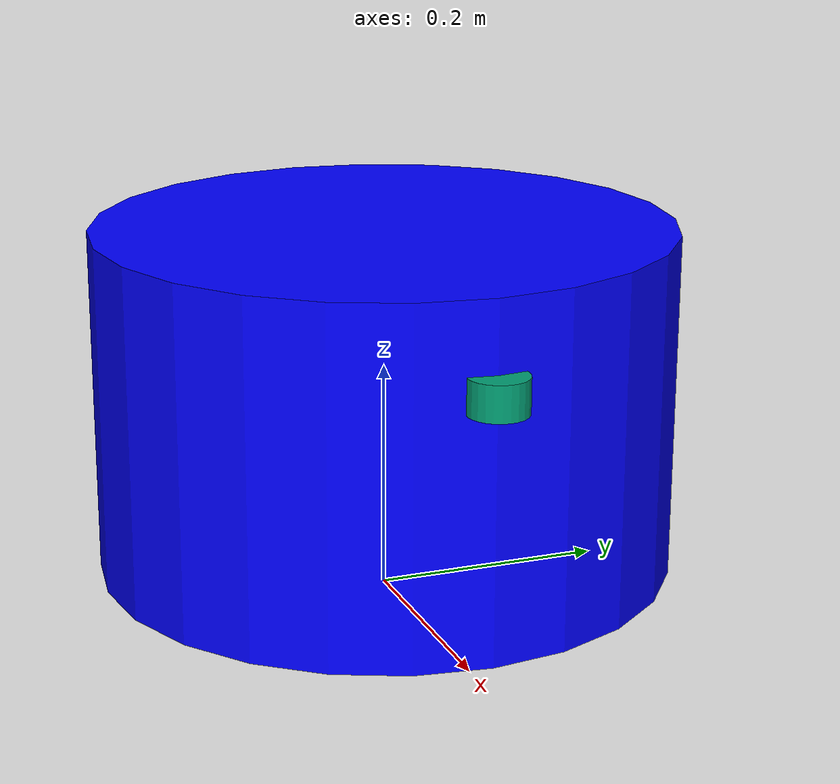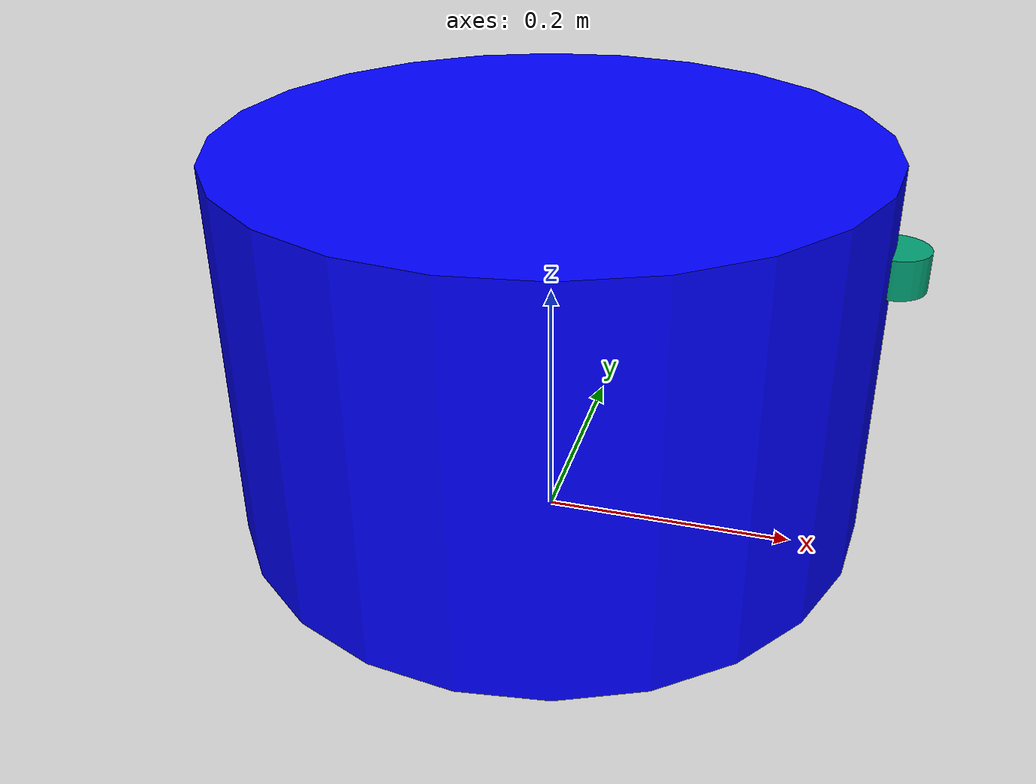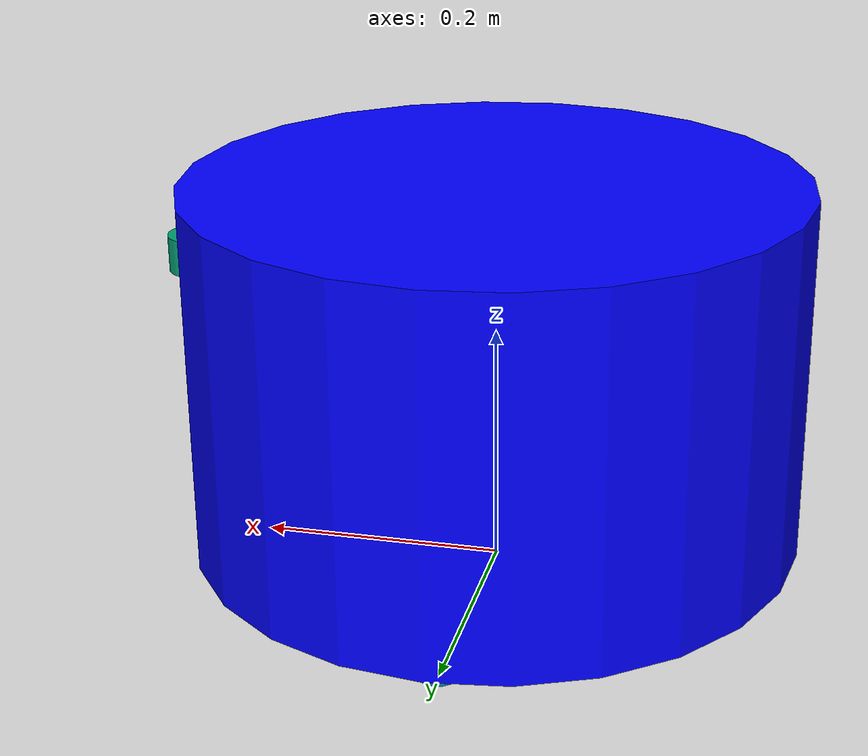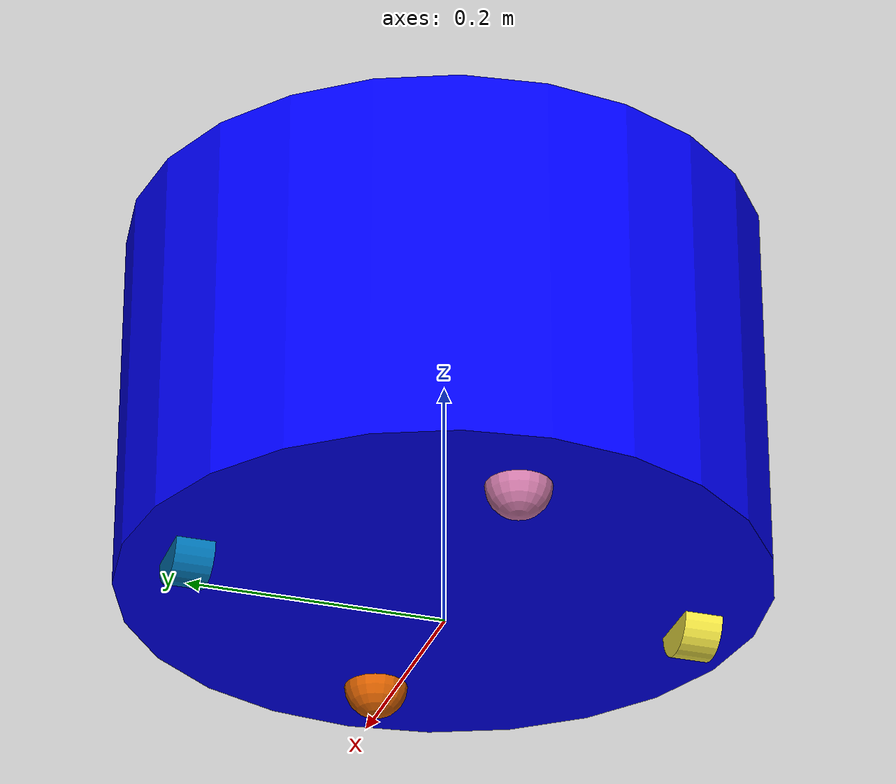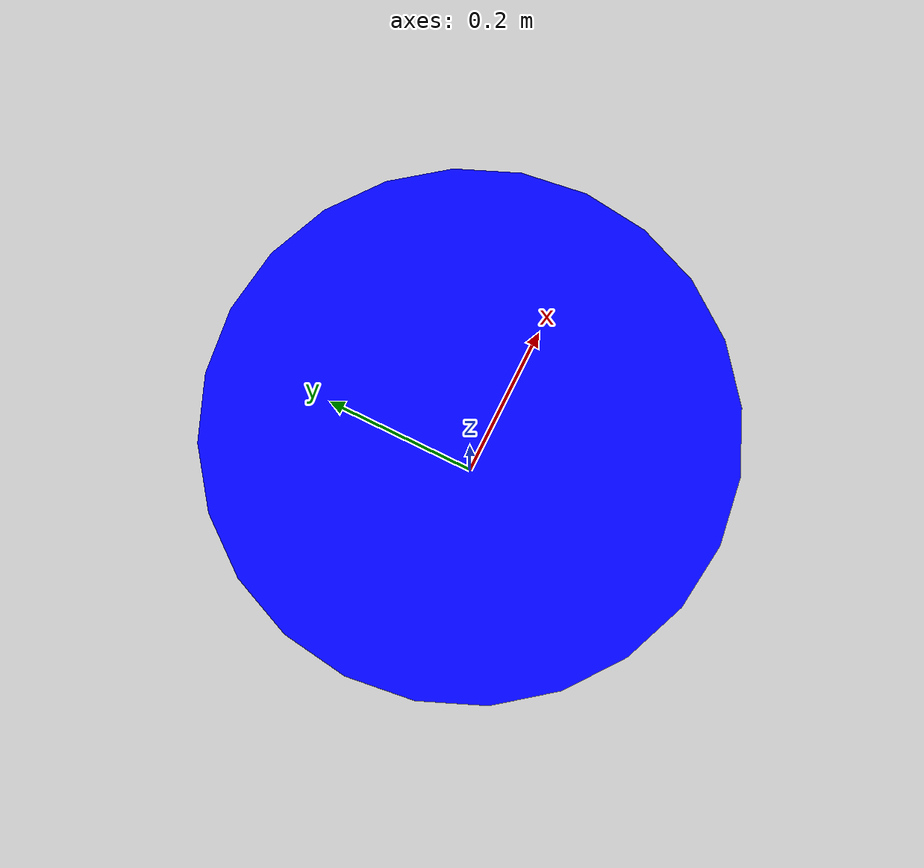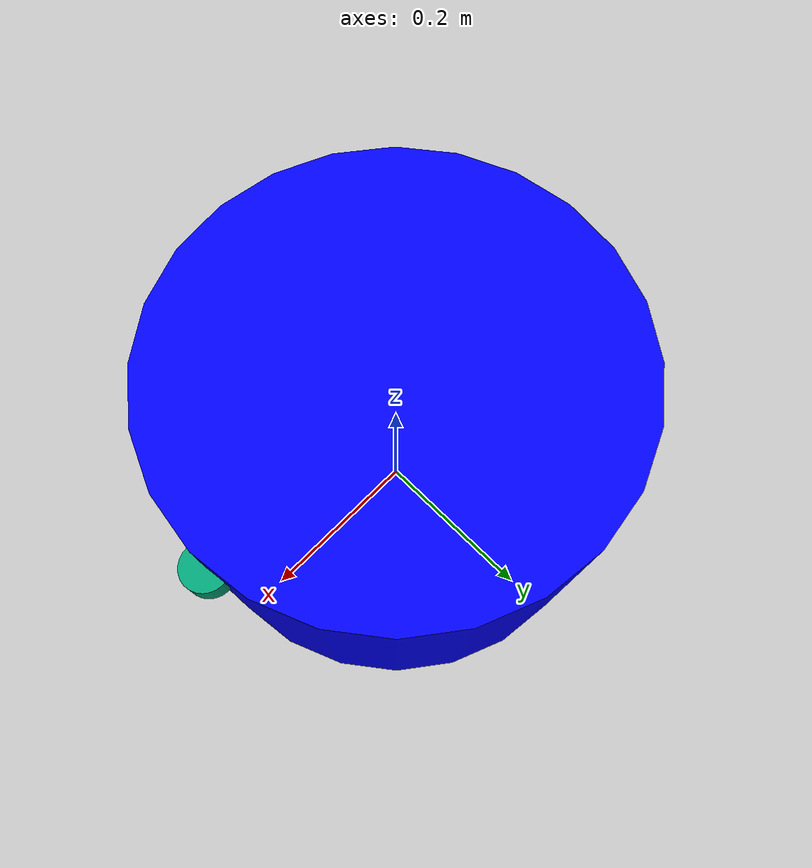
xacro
<?xml version="1.0" ?>
<robot name="rb1" xmlns:xacro="http://www.ros.org/wiki/xacro">
    <xacro:include filename="$(find my_rb1_description)/urdf/my_rb1_description.gazebo" />

    <material name="blue">
        <color rgba="0 0 1 1"/>
    </material>

    <link name="base_footprint" />

    <joint name="base_footprint_base_joint" type="fixed">
        <parent link="base_footprint" />
        <child link="base_link" />
        <origin xyz="0 0 0.175" rpy="0 0 0" />
    </joint>

    <link name="base_link">
        <inertial>
            <mass value="20" />
            <inertia ixx="0.4625"  ixy="0"  ixz="0" iyy="0.4625" iyz="0" izz="0.625" />
        </inertial>
        <collision>
             <geometry>
                <cylinder radius="0.25" length="0.30" />
            </geometry>
        </collision>
        <visual>
            <geometry>
                <cylinder radius="0.25" length="0.30" />
            </geometry>
            <material name="blue" />
        </visual>
    </link>

    <!-- Front Laser -->
    <joint name="front_laser_base_joint" type="fixed">
        <parent link="base_link" />
        <child link="front_laser" />
        <origin xyz="0.25 0 0.075" rpy="0 0 0" />
    </joint>

    <link name="front_laser">
        <inertial>
            <mass value="0.5" />
            <inertia ixx="0.000115625"  ixy="0"  ixz="0" iyy="0.000115625" iyz="0" izz="0.00015625" />
        </inertial>
        <collision>
            <origin xyz="0 0 0" rpy="3.14 0 0" />
            <geometry>
                 <cylinder radius="0.025" length="0.03" />
            </geometry>
        </collision>
        <visual>
            <origin xyz="0 0 0" rpy="3.14 0 0" />
            <geometry>
                 <cylinder radius="0.025" length="0.03" />
            </geometry>
        </visual>
    </link>

    <!-- Left Wheel -->
    <joint name="left_wheel_base_joint" type="continuous">
        <parent link="base_link" />
        <child link="left_wheel" />
        <origin xyz="0 -0.2 -0.15" rpy="0 0 0" />
        <axis xyz="0 1 0" />
    </joint>

    <link name="left_wheel">
        <inertial>
            <mass value="2" />
            <inertia ixx="0.0153125"  ixy="0"  ixz="0" iyy="0.0153125" iyz="0" izz="0.000625" />
        </inertial>
        <collision>
            <origin xyz="0 0 0" rpy="1.57 0 0" />
            <geometry>
                <cylinder radius="0.025" length="0.03" />
            </geometry>
        </collision>
        <visual>
            <origin xyz="0 0 0" rpy="1.57 0 0" />
            <geometry>
                <cylinder radius="0.025" length="0.03" />
            </geometry>
        </visual>
    </link>

    <!-- Right Wheel -->
    <joint name="right_wheel_base_joint" type="continuous">
        <parent link="base_link" />
        <child link="right_wheel" />
        <origin xyz="0 0.2 -0.15" rpy="0 0 0" />
        <axis xyz="0 1 0" />
    </joint>

    <link name="right_wheel">
        <inertial>
            <mass value="2" />
           <inertia ixx="0.0153125"  ixy="0"  ixz="0" iyy="0.0153125" iyz="0" izz="0.000625" />
        </inertial>
        <collision>
            <origin xyz="0 0 0" rpy="-1.57 0 0" />
            <geometry>
                <cylinder radius="0.025" length="0.03" />
            </geometry>
        </collision>
        <visual>
            <origin xyz="0 0 0" rpy="-1.57 0 0" />
            <geometry>
                <cylinder radius="0.025" length="0.03" />
            </geometry>
        </visual>
    </link>

    <!-- Front Caster -->
    <joint name="front_caster_base_joint" type="fixed">
        <parent link="base_link" />
        <child link="front_caster" />
        <origin xyz="0.175 0.0 -0.15" rpy="0 0 0" />
    </joint>

    <link name="front_caster">
        <inertial>
            <mass value="0.25" />
            <inertia ixx="0.0000625" ixy="0" ixz="0" iyy="0.0000625" iyz="0" izz="0.0000625"/>
        </inertial>
        <collision>
            <geometry>
                <sphere radius="0.025" />
            </geometry>
        </collision>
        <visual>
            <geometry>
                <sphere radius="0.025" />
            </geometry>
        </visual>
    </link>

    <!-- Back Caster -->
    <joint name="back_caster_base_joint" type="fixed">
        <parent link="base_link" />
        <child link="back_caster" />
        <origin xyz="-0.175 0.0 -0.15" rpy="0 0 0" />
    </joint>

    <link name="back_caster">
        <inertial>
            <mass value="0.25" />
            <inertia ixx="0.0000625" ixy="0" ixz="0" iyy="0.0000625" iyz="0" izz="0.0000625"/>
        </inertial>
        <collision>
            <geometry>
                <sphere radius="0.025" />
            </geometry>
        </collision>
        <visual>
            <geometry>
                <sphere radius="0.025" />
            </geometry>
        </visual>
    </link>
</robot>
